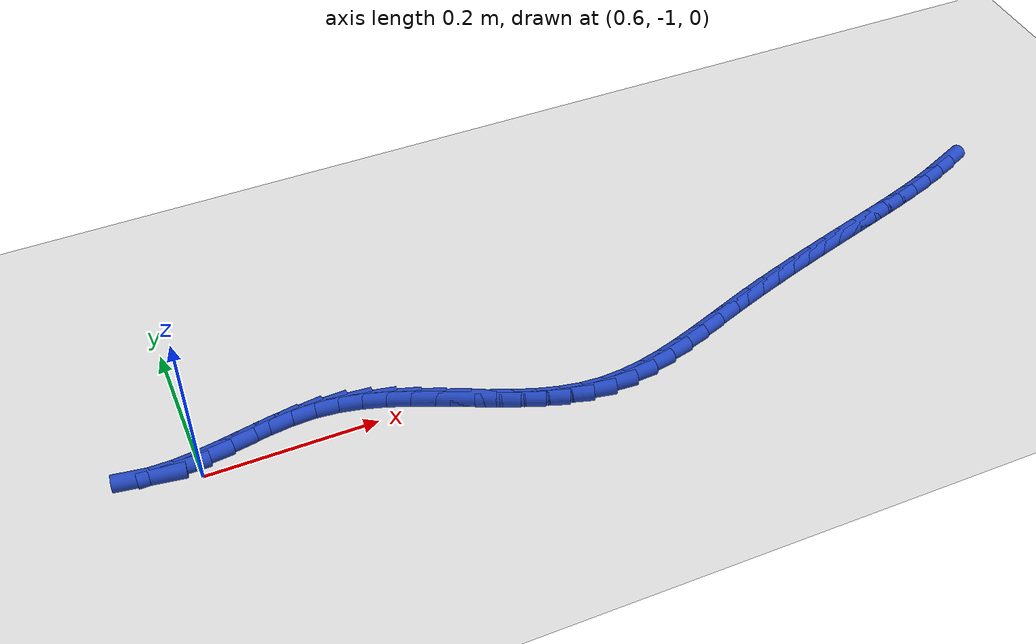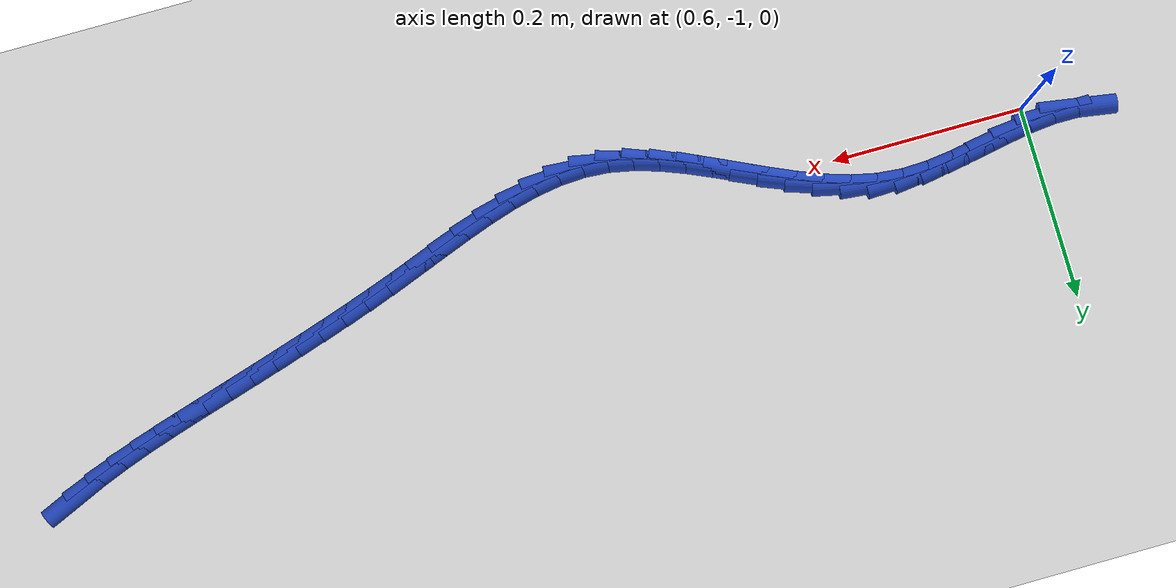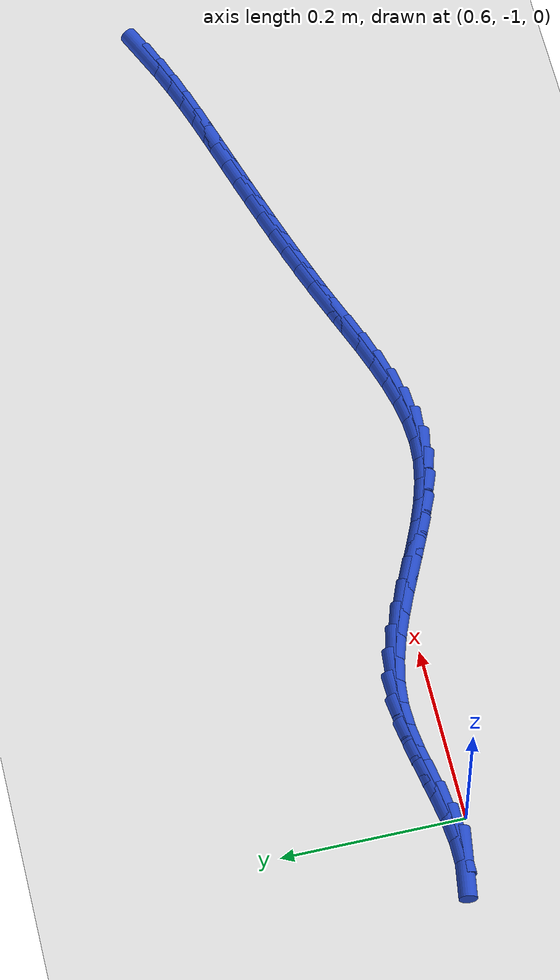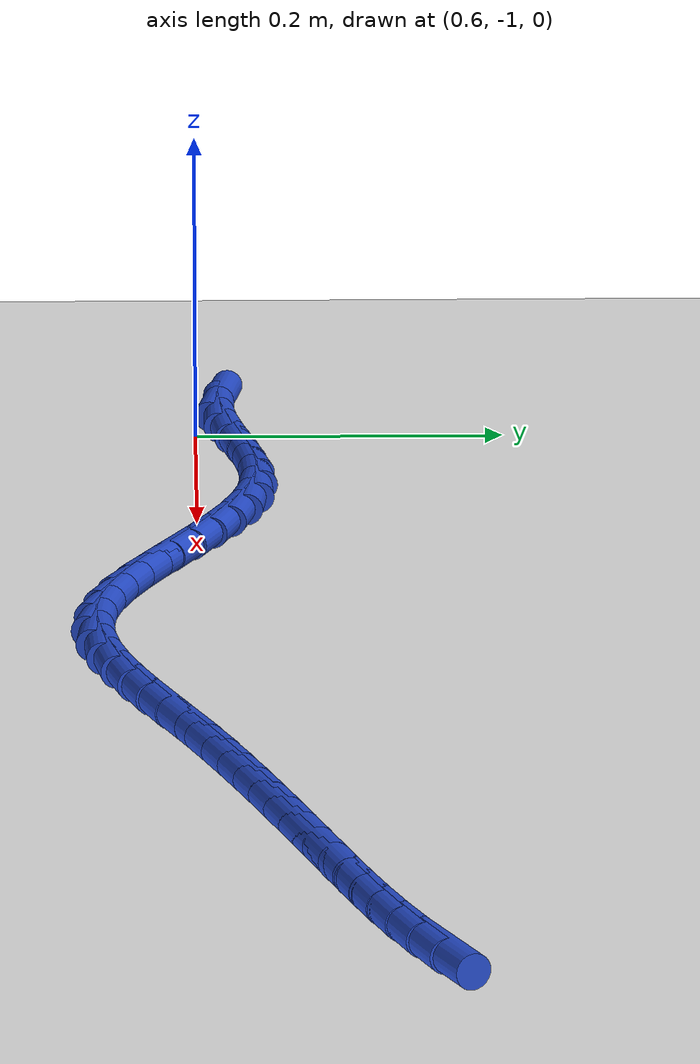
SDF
<sdf version="1.6">
 <world name="default">
  <model name="ground_plane">
   <static>1</static>
   <link name="link">
    <collision name="collision">
     <geometry><plane><normal>0 0 1</normal><size>100 100</size></plane></geometry>
     <surface><friction><ode><mu>100</mu><mu2>50</mu2></ode></friction></surface>
    </collision>
    <visual name="visual">
     <cast_shadows>0</cast_shadows>
     <geometry><plane><normal>0 0 1</normal><size>100 100</size></plane></geometry>
     <material>
      <script><uri>file://media/materials/scripts/gazebo.material</uri><name>Gazebo/WhiteGlow</name></script>
     </material>
    </visual>
   </link>
  </model>
  <model name="line">
   <link name="link_166">
    <pose>1.6220693011421328 -0.8782087354334446 0.01 0 1.57 0.4181035325832998</pose>
    <collision name="collision">
     <geometry><cylinder><radius>0.01</radius><length>0.08</length></cylinder></geometry>
    </collision>
    <visual name="visual">
     <material>
      <script><name>Gazebo/Blue</name><uri>file://media/materials/scripts/gazebo.material</uri></script>
     </material>
     <geometry><cylinder><radius>0.01</radius><length>0.08</length></cylinder></geometry>
    </visual>
   </link>
   <link name="link_167">
    <pose>1.5970846640765346 -0.8893094045368218 0.01 0 1.57 0.37556645154467766</pose>
    <collision name="collision">
     <geometry><cylinder><radius>0.01</radius><length>0.08</length></cylinder></geometry>
    </collision>
    <visual name="visual">
     <material>
      <script><name>Gazebo/Blue</name><uri>file://media/materials/scripts/gazebo.material</uri></script>
     </material>
     <geometry><cylinder><radius>0.01</radius><length>0.08</length></cylinder></geometry>
    </visual>
   </link>
   <link name="link_168">
    <pose>1.5714733846250222 -0.899407443886685 0.01 0 1.57 0.34220523671741543</pose>
    <collision name="collision">
     <geometry><cylinder><radius>0.01</radius><length>0.08</length></cylinder></geometry>
    </collision>
    <visual name="visual">
     <material>
      <script><name>Gazebo/Blue</name><uri>file://media/materials/scripts/gazebo.material</uri></script>
     </material>
     <geometry><cylinder><radius>0.01</radius><length>0.08</length></cylinder></geometry>
    </visual>
   </link>
   <link name="link_169">
    <pose>1.5454112982585066 -0.9086912802030243 0.01 0 1.57 0.31761140870511045</pose>
    <collision name="collision">
     <geometry><cylinder><radius>0.01</radius><length>0.08</length></cylinder></geometry>
    </collision>
    <visual name="visual">
     <material>
      <script><name>Gazebo/Blue</name><uri>file://media/materials/scripts/gazebo.material</uri></script>
     </material>
     <geometry><cylinder><radius>0.01</radius><length>0.08</length></cylinder></geometry>
    </visual>
   </link>
   <link name="link_170">
    <pose>1.5190742404478985 -0.9173493402058299 0.01 0 1.57 0.30148511351907953</pose>
    <collision name="collision">
     <geometry><cylinder><radius>0.01</radius><length>0.08</length></cylinder></geometry>
    </collision>
    <visual name="visual">
     <material>
      <script><name>Gazebo/Blue</name><uri>file://media/materials/scripts/gazebo.material</uri></script>
     </material>
     <geometry><cylinder><radius>0.01</radius><length>0.08</length></cylinder></geometry>
    </visual>
   </link>
   <link name="link_171">
    <pose>1.4926380466641087 -0.9255700506150922 0.01 0 1.57 0.2936801179820197</pose>
    <collision name="collision">
     <geometry><cylinder><radius>0.01</radius><length>0.08</length></cylinder></geometry>
    </collision>
    <visual name="visual">
     <material>
      <script><name>Gazebo/Blue</name><uri>file://media/materials/scripts/gazebo.material</uri></script>
     </material>
     <geometry><cylinder><radius>0.01</radius><length>0.08</length></cylinder></geometry>
    </visual>
   </link>
   <link name="link_172">
    <pose>1.4662785327540737 -0.9335418277721212 0.01 0 1.57 0.29284360109620655</pose>
    <collision name="collision">
     <geometry><cylinder><radius>0.01</radius><length>0.08</length></cylinder></geometry>
    </collision>
    <visual name="visual">
     <material>
      <script><name>Gazebo/Blue</name><uri>file://media/materials/scripts/gazebo.material</uri></script>
     </material>
     <geometry><cylinder><radius>0.01</radius><length>0.08</length></cylinder></geometry>
    </visual>
   </link>
   <link name="link_173">
    <pose>1.4401237364414914 -0.9414278192394275 0.01 0 1.57 0.29470479712779996</pose>
    <collision name="collision">
     <geometry><cylinder><radius>0.01</radius><length>0.08</length></cylinder></geometry>
    </collision>
    <visual name="visual">
     <material>
      <script><name>Gazebo/Blue</name><uri>file://media/materials/scripts/gazebo.material</uri></script>
     </material>
     <geometry><cylinder><radius>0.01</radius><length>0.08</length></cylinder></geometry>
    </visual>
   </link>
   <link name="link_174">
    <pose>1.4141512509808825 -0.9493116058708357 0.01 0 1.57 0.2984324827554352</pose>
    <collision name="collision">
     <geometry><cylinder><radius>0.01</radius><length>0.08</length></cylinder></geometry>
    </collision>
    <visual name="visual">
     <material>
      <script><name>Gazebo/Blue</name><uri>file://media/materials/scripts/gazebo.material</uri></script>
     </material>
     <geometry><cylinder><radius>0.01</radius><length>0.08</length></cylinder></geometry>
    </visual>
   </link>
   <link name="link_175">
    <pose>1.3883091327784935 -0.9572611471429611 0.01 0 1.57 0.3040195859271843</pose>
    <collision name="collision">
     <geometry><cylinder><radius>0.01</radius><length>0.08</length></cylinder></geometry>
    </collision>
    <visual name="visual">
     <material>
      <script><name>Gazebo/Blue</name><uri>file://media/materials/scripts/gazebo.material</uri></script>
     </material>
     <geometry><cylinder><radius>0.01</radius><length>0.08</length></cylinder></geometry>
    </visual>
   </link>
   <link name="link_176">
    <pose>1.362545438240573 -0.9653444025324187 0.01 0 1.57 0.3114297174299086</pose>
    <collision name="collision">
     <geometry><cylinder><radius>0.01</radius><length>0.08</length></cylinder></geometry>
    </collision>
    <visual name="visual">
     <material>
      <script><name>Gazebo/Blue</name><uri>file://media/materials/scripts/gazebo.material</uri></script>
     </material>
     <geometry><cylinder><radius>0.01</radius><length>0.08</length></cylinder></geometry>
    </visual>
   </link>
   <link name="link_177">
    <pose>1.3368082237733667 -0.9736293315158251 0.01 0 1.57 0.3205973764985113</pose>
    <collision name="collision">
     <geometry><cylinder><radius>0.01</radius><length>0.08</length></cylinder></geometry>
    </collision>
    <visual name="visual">
     <material>
      <script><name>Gazebo/Blue</name><uri>file://media/materials/scripts/gazebo.material</uri></script>
     </material>
     <geometry><cylinder><radius>0.01</radius><length>0.08</length></cylinder></geometry>
    </visual>
   </link>
   <link name="link_178">
    <pose>1.3110455457831225 -0.9821838935697951 0.01 0 1.57 0.3314291709391499</pose>
    <collision name="collision">
     <geometry><cylinder><radius>0.01</radius><length>0.08</length></cylinder></geometry>
    </collision>
    <visual name="visual">
     <material>
      <script><name>Gazebo/Blue</name><uri>file://media/materials/scripts/gazebo.material</uri></script>
     </material>
     <geometry><cylinder><radius>0.01</radius><length>0.08</length></cylinder></geometry>
    </visual>
   </link>
   <link name="link_179">
    <pose>1.2852054606760872 -0.9910760481709441 0.01 0 1.57 0.3438060530374502</pose>
    <collision name="collision">
     <geometry><cylinder><radius>0.01</radius><length>0.08</length></cylinder></geometry>
    </collision>
    <visual name="visual">
     <material>
      <script><name>Gazebo/Blue</name><uri>file://media/materials/scripts/gazebo.material</uri></script>
     </material>
     <geometry><cylinder><radius>0.01</radius><length>0.08</length></cylinder></geometry>
    </visual>
   </link>
   <link name="link_180">
    <pose>1.2592360248585088 -1.000373754795888 0.01 0 1.57 0.35757085577691167</pose>
    <collision name="collision">
     <geometry><cylinder><radius>0.01</radius><length>0.08</length></cylinder></geometry>
    </collision>
    <visual name="visual">
     <material>
      <script><name>Gazebo/Blue</name><uri>file://media/materials/scripts/gazebo.material</uri></script>
     </material>
     <geometry><cylinder><radius>0.01</radius><length>0.08</length></cylinder></geometry>
    </visual>
   </link>
   <link name="link_181">
    <pose>1.2330853915745068 -1.0101444702091535 0.01 0 1.57 0.3677006981566122</pose>
    <collision name="collision">
     <geometry><cylinder><radius>0.01</radius><length>0.08</length></cylinder></geometry>
    </collision>
    <visual name="visual">
     <material>
      <script><name>Gazebo/Blue</name><uri>file://media/materials/scripts/gazebo.material</uri></script>
     </material>
     <geometry><cylinder><radius>0.01</radius><length>0.08</length></cylinder></geometry>
    </visual>
   </link>
   <link name="link_182">
    <pose>1.2067324362565455 -1.020296163828883 0.01 0 1.57 0.3626087657922546</pose>
    <collision name="collision">
     <geometry><cylinder><radius>0.01</radius><length>0.08</length></cylinder></geometry>
    </collision>
    <visual name="visual">
     <material>
      <script><name>Gazebo/Blue</name><uri>file://media/materials/scripts/gazebo.material</uri></script>
     </material>
     <geometry><cylinder><radius>0.01</radius><length>0.08</length></cylinder></geometry>
    </visual>
   </link>
   <link name="link_183">
    <pose>1.18023042823196 -1.0303506058627976 0.01 0 1.57 0.34056606047945426</pose>
    <collision name="collision">
     <geometry><cylinder><radius>0.01</radius><length>0.08</length></cylinder></geometry>
    </collision>
    <visual name="visual">
     <material>
      <script><name>Gazebo/Blue</name><uri>file://media/materials/scripts/gazebo.material</uri></script>
     </material>
     <geometry><cylinder><radius>0.01</radius><length>0.08</length></cylinder></geometry>
    </visual>
   </link>
   <link name="link_184">
    <pose>1.1536436764694662 -1.0397722566977965 0.01 0 1.57 0.30078026538422376</pose>
    <collision name="collision">
     <geometry><cylinder><radius>0.01</radius><length>0.08</length></cylinder></geometry>
    </collision>
    <visual name="visual">
     <material>
      <script><name>Gazebo/Blue</name><uri>file://media/materials/scripts/gazebo.material</uri></script>
     </material>
     <geometry><cylinder><radius>0.01</radius><length>0.08</length></cylinder></geometry>
    </visual>
   </link>
   <link name="link_185">
    <pose>1.1270364899377823 -1.0480255767207793 0.01 0 1.57 0.24173838018205906</pose>
    <collision name="collision">
     <geometry><cylinder><radius>0.01</radius><length>0.08</length></cylinder></geometry>
    </collision>
    <visual name="visual">
     <material>
      <script><name>Gazebo/Blue</name><uri>file://media/materials/scripts/gazebo.material</uri></script>
     </material>
     <geometry><cylinder><radius>0.01</radius><length>0.08</length></cylinder></geometry>
    </visual>
   </link>
   <link name="link_186">
    <pose>1.1004731776056256 -1.054575026318646 0.01 0 1.57 0.16149996425210086</pose>
    <collision name="collision">
     <geometry><cylinder><radius>0.01</radius><length>0.08</length></cylinder></geometry>
    </collision>
    <visual name="visual">
     <material>
      <script><name>Gazebo/Blue</name><uri>file://media/materials/scripts/gazebo.material</uri></script>
     </material>
     <geometry><cylinder><radius>0.01</radius><length>0.08</length></cylinder></geometry>
    </visual>
   </link>
   <link name="link_187">
    <pose>1.0740180484417137 -1.0588850658782967 0.01 0 1.57 0.05834071675133423</pose>
    <collision name="collision">
     <geometry><cylinder><radius>0.01</radius><length>0.08</length></cylinder></geometry>
    </collision>
    <visual name="visual">
     <material>
      <script><name>Gazebo/Blue</name><uri>file://media/materials/scripts/gazebo.material</uri></script>
     </material>
     <geometry><cylinder><radius>0.01</radius><length>0.08</length></cylinder></geometry>
    </visual>
   </link>
   <link name="link_188">
    <pose>1.0477354114147632 -1.0604201557866295 0.01 0 1.57 -0.0675455611013637</pose>
    <collision name="collision">
     <geometry><cylinder><radius>0.01</radius><length>0.08</length></cylinder></geometry>
    </collision>
    <visual name="visual">
     <material>
      <script><name>Gazebo/Blue</name><uri>file://media/materials/scripts/gazebo.material</uri></script>
     </material>
     <geometry><cylinder><radius>0.01</radius><length>0.08</length></cylinder></geometry>
    </visual>
   </link>
   <link name="link_189">
    <pose>1.0216881236698232 -1.0586580965639791 0.01 0 1.57 -0.19444626526619146</pose>
    <collision name="collision">
     <geometry><cylinder><radius>0.01</radius><length>0.08</length></cylinder></geometry>
    </collision>
    <visual name="visual">
     <material>
      <script><name>Gazebo/Blue</name><uri>file://media/materials/scripts/gazebo.material</uri></script>
     </material>
     <geometry><cylinder><radius>0.01</radius><length>0.08</length></cylinder></geometry>
    </visual>
   </link>
   <link name="link_190">
    <pose>0.9958846471512152 -1.0535765009676135 0.01 0 1.57 -0.29498721740993844</pose>
    <collision name="collision">
     <geometry><cylinder><radius>0.01</radius><length>0.08</length></cylinder></geometry>
    </collision>
    <visual name="visual">
     <material>
      <script><name>Gazebo/Blue</name><uri>file://media/materials/scripts/gazebo.material</uri></script>
     </material>
     <geometry><cylinder><radius>0.01</radius><length>0.08</length></cylinder></geometry>
    </visual>
   </link>
   <link name="link_191">
    <pose>0.9702639430182713 -1.04579159219013 0.01 0 1.57 -0.3679024356249359</pose>
    <collision name="collision">
     <geometry><cylinder><radius>0.01</radius><length>0.08</length></cylinder></geometry>
    </collision>
    <visual name="visual">
     <material>
      <script><name>Gazebo/Blue</name><uri>file://media/materials/scripts/gazebo.material</uri></script>
     </material>
     <geometry><cylinder><radius>0.01</radius><length>0.08</length></cylinder></geometry>
    </visual>
   </link>
   <link name="link_192">
    <pose>0.944760442500167 -1.035961216848515 0.01 0 1.57 -0.415137864651927</pose>
    <collision name="collision">
     <geometry><cylinder><radius>0.01</radius><length>0.08</length></cylinder></geometry>
    </collision>
    <visual name="visual">
     <material>
      <script><name>Gazebo/Blue</name><uri>file://media/materials/scripts/gazebo.material</uri></script>
     </material>
     <geometry><cylinder><radius>0.01</radius><length>0.08</length></cylinder></geometry>
    </visual>
   </link>
   <link name="link_193">
    <pose>0.9193085768260782 -1.0247432215597565 0.01 0 1.57 -0.43868018140378157</pose>
    <collision name="collision">
     <geometry><cylinder><radius>0.01</radius><length>0.08</length></cylinder></geometry>
    </collision>
    <visual name="visual">
     <material>
      <script><name>Gazebo/Blue</name><uri>file://media/materials/scripts/gazebo.material</uri></script>
     </material>
     <geometry><cylinder><radius>0.01</radius><length>0.08</length></cylinder></geometry>
    </visual>
   </link>
   <link name="link_194">
    <pose>0.8938427772251795 -1.0127954529408396 0.01 0 1.57 -0.43979055358978336</pose>
    <collision name="collision">
     <geometry><cylinder><radius>0.01</radius><length>0.08</length></cylinder></geometry>
    </collision>
    <visual name="visual">
     <material>
      <script><name>Gazebo/Blue</name><uri>file://media/materials/scripts/gazebo.material</uri></script>
     </material>
     <geometry><cylinder><radius>0.01</radius><length>0.08</length></cylinder></geometry>
    </visual>
   </link>
   <link name="link_195">
    <pose>0.8682974749266469 -1.000775757608752 0.01 0 1.57 -0.41873880715034106</pose>
    <collision name="collision">
     <geometry><cylinder><radius>0.01</radius><length>0.08</length></cylinder></geometry>
    </collision>
    <visual name="visual">
     <material>
      <script><name>Gazebo/Blue</name><uri>file://media/materials/scripts/gazebo.material</uri></script>
     </material>
     <geometry><cylinder><radius>0.01</radius><length>0.08</length></cylinder></geometry>
    </visual>
   </link>
   <link name="link_196">
    <pose>0.8426071011596559 -0.9893419821804799 0.01 0 1.57 -0.3748221939052374</pose>
    <collision name="collision">
     <geometry><cylinder><radius>0.01</radius><length>0.08</length></cylinder></geometry>
    </collision>
    <visual name="visual">
     <material>
      <script><name>Gazebo/Blue</name><uri>file://media/materials/scripts/gazebo.material</uri></script>
     </material>
     <geometry><cylinder><radius>0.01</radius><length>0.08</length></cylinder></geometry>
    </visual>
   </link>
   <link name="link_197">
    <pose>0.8167060871533818 -0.9791519732730101 0.01 0 1.57 -0.306639579249825</pose>
    <collision name="collision">
     <geometry><cylinder><radius>0.01</radius><length>0.08</length></cylinder></geometry>
    </collision>
    <visual name="visual">
     <material>
      <script><name>Gazebo/Blue</name><uri>file://media/materials/scripts/gazebo.material</uri></script>
     </material>
     <geometry><cylinder><radius>0.01</radius><length>0.08</length></cylinder></geometry>
    </visual>
   </link>
   <link name="link_198">
    <pose>0.7905288641370002 -0.9708635775033296 0.01 0 1.57 -0.2127617500376683</pose>
    <collision name="collision">
     <geometry><cylinder><radius>0.01</radius><length>0.08</length></cylinder></geometry>
    </collision>
    <visual name="visual">
     <material>
      <script><name>Gazebo/Blue</name><uri>file://media/materials/scripts/gazebo.material</uri></script>
     </material>
     <geometry><cylinder><radius>0.01</radius><length>0.08</length></cylinder></geometry>
    </visual>
   </link>
   <link name="link_199">
    <pose>0.7640098633396866 -0.965134641488425 0.01 0 1.57 -0.0930468920222911</pose>
    <collision name="collision">
     <geometry><cylinder><radius>0.01</radius><length>0.08</length></cylinder></geometry>
    </collision>
    <visual name="visual">
     <material>
      <script><name>Gazebo/Blue</name><uri>file://media/materials/scripts/gazebo.material</uri></script>
     </material>
     <geometry><cylinder><radius>0.01</radius><length>0.08</length></cylinder></geometry>
    </visual>
   </link>
   <link name="link_200">
    <pose>0.7370836610875477 -0.9626219865751222 0.01 0 1.57 0.03369947317671152</pose>
    <collision name="collision">
     <geometry><cylinder><radius>0.01</radius><length>0.08</length></cylinder></geometry>
    </collision>
    <visual name="visual">
     <material>
      <script><name>Gazebo/Blue</name><uri>file://media/materials/scripts/gazebo.material</uri></script>
     </material>
     <geometry><cylinder><radius>0.01</radius><length>0.08</length></cylinder></geometry>
    </visual>
   </link>
   <link name="link_201">
    <pose>0.7097469422680175 -0.9635435684903499 0.01 0 1.57 0.12451257605974098</pose>
    <collision name="collision">
     <geometry><cylinder><radius>0.01</radius><length>0.08</length></cylinder></geometry>
    </collision>
    <visual name="visual">
     <material>
      <script><name>Gazebo/Blue</name><uri>file://media/materials/scripts/gazebo.material</uri></script>
     </material>
     <geometry><cylinder><radius>0.01</radius><length>0.08</length></cylinder></geometry>
    </visual>
   </link>
   <link name="link_202">
    <pose>0.6821549457213572 -0.9669969840715875 0.01 0 1.57 0.1755207554354881</pose>
    <collision name="collision">
     <geometry><cylinder><radius>0.01</radius><length>0.08</length></cylinder></geometry>
    </collision>
    <visual name="visual">
     <material>
      <script><name>Gazebo/Blue</name><uri>file://media/materials/scripts/gazebo.material</uri></script>
     </material>
     <geometry><cylinder><radius>0.01</radius><length>0.08</length></cylinder></geometry>
    </visual>
   </link>
   <link name="link_203">
    <pose>0.6544878469454058 -0.9719036251138432 0.01 0 1.57 0.18931884105705354</pose>
    <collision name="collision">
     <geometry><cylinder><radius>0.01</radius><length>0.08</length></cylinder></geometry>
    </collision>
    <visual name="visual">
     <material>
      <script><name>Gazebo/Blue</name><uri>file://media/materials/scripts/gazebo.material</uri></script>
     </material>
     <geometry><cylinder><radius>0.01</radius><length>0.08</length></cylinder></geometry>
    </visual>
   </link>
   <link name="link_204">
    <pose>0.626925821438004 -0.9771848834121253 0.01 0 1.57 0.16625917182298255</pose>
    <collision name="collision">
     <geometry><cylinder><radius>0.01</radius><length>0.08</length></cylinder></geometry>
    </collision>
    <visual name="visual">
     <material>
      <script><name>Gazebo/Blue</name><uri>file://media/materials/scripts/gazebo.material</uri></script>
     </material>
     <geometry><cylinder><radius>0.01</radius><length>0.08</length></cylinder></geometry>
    </visual>
   </link>
   <link name="link_205">
    <pose>0.5996490446969908 -0.9817621507614422 0.01 0 1.57 0.10385945535266991</pose>
    <collision name="collision">
     <geometry><cylinder><radius>0.01</radius><length>0.08</length></cylinder></geometry>
    </collision>
    <visual name="visual">
     <material>
      <script><name>Gazebo/Blue</name><uri>file://media/materials/scripts/gazebo.material</uri></script>
     </material>
     <geometry><cylinder><radius>0.01</radius><length>0.08</length></cylinder></geometry>
    </visual>
   </link>
   <link name="link_206">
    <pose>0.5728376922202059 -0.9845568189568024 0.01 0 1.57 -0.0025429813115961006</pose>
    <collision name="collision">
     <geometry><cylinder><radius>0.01</radius><length>0.08</length></cylinder></geometry>
    </collision>
    <visual name="visual">
     <material>
      <script><name>Gazebo/Blue</name><uri>file://media/materials/scripts/gazebo.material</uri></script>
     </material>
     <geometry><cylinder><radius>0.01</radius><length>0.08</length></cylinder></geometry>
    </visual>
   </link>
   <link name="link_207">
    <pose>0.5466719395054893 -0.9844902797932141 0.01 0 1.57 -0.15437286941932724</pose>
    <collision name="collision">
     <geometry><cylinder><radius>0.01</radius><length>0.08</length></cylinder></geometry>
    </collision>
    <visual name="visual">
     <material>
      <script><name>Gazebo/Blue</name><uri>file://media/materials/scripts/gazebo.material</uri></script>
     </material>
     <geometry><cylinder><radius>0.01</radius><length>0.08</length></cylinder></geometry>
    </visual>
   </link>
  </model>
 </world>
</sdf>
